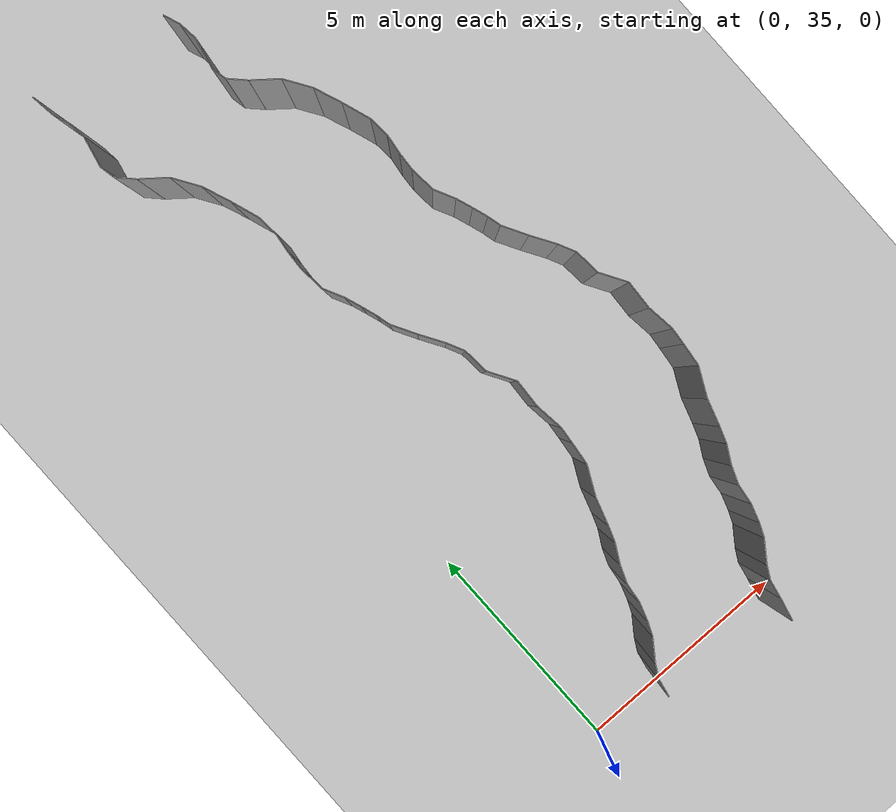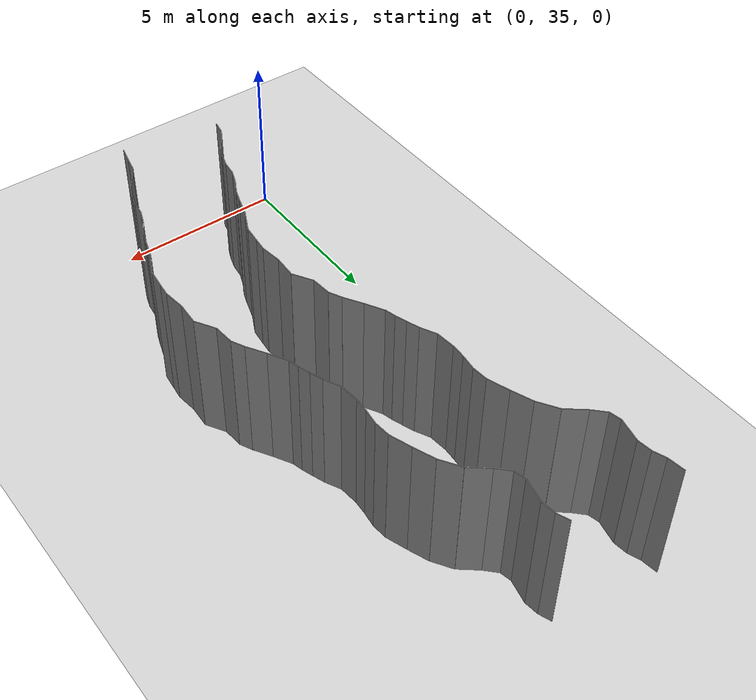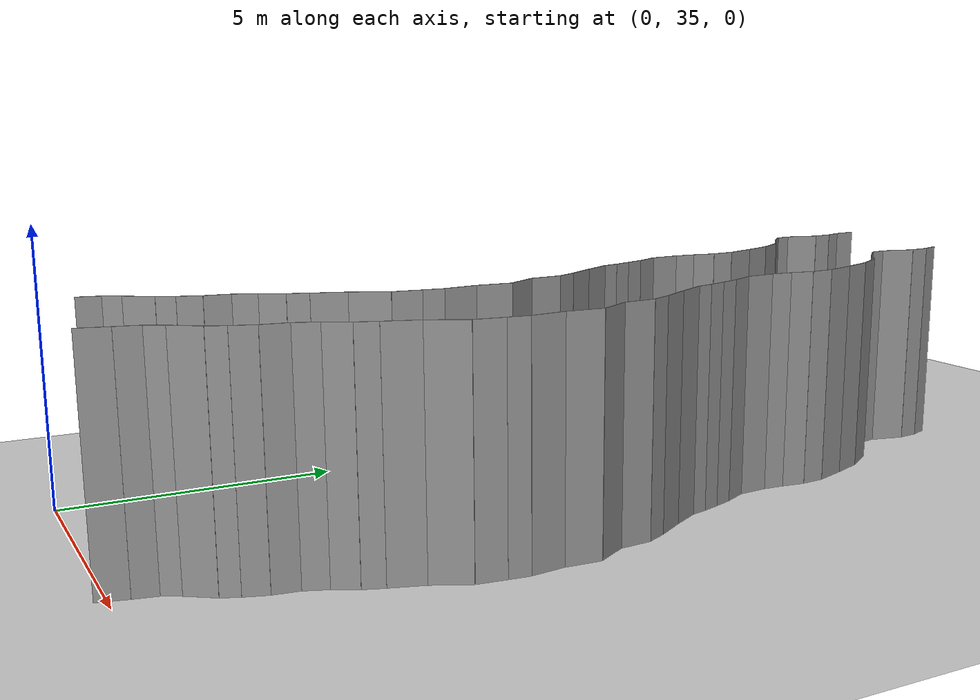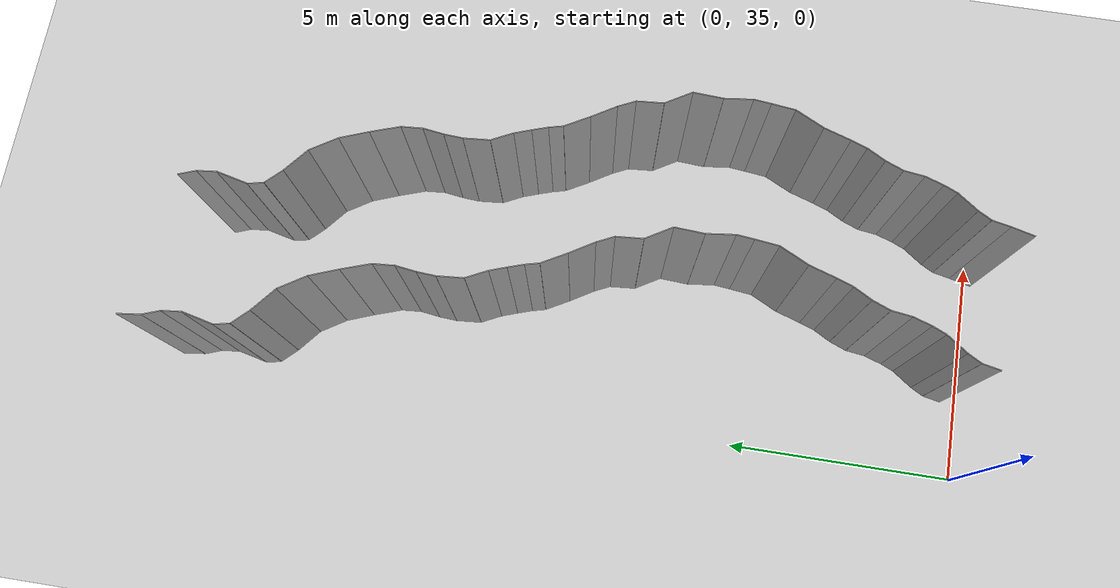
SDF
<sdf version="1.6">
 <world name="default">
  <model name="ground_plane">
   <static>1</static>
   <link name="link">
    <collision name="collision">
     <geometry><plane><normal>0 0 1</normal><size>200 200</size></plane></geometry>
     <surface><friction><ode><mu>100</mu><mu2>50</mu2></ode></friction></surface>
    </collision>
    <visual name="visual">
     <cast_shadows>0</cast_shadows>
     <geometry><plane><normal>0 0 1</normal><size>200 200</size></plane></geometry>
     <material>
      <script><uri>file://media/materials/scripts/gazebo.material</uri><name>Gazebo/Grey</name></script>
     </material>
    </visual>
   </link>
   <pose>0 100 0 0 -0 0</pose>
  </model>
  <model name="wall_149">
   <static>1</static>
   <pose>4.6969793171216 35.0735303822355 2 0 0 -0.24166629643161994</pose>
   <link name="link">
    <collision name="collision"><geometry><box><size>0.02 0.5210264239 4</size></box></geometry></collision>
    <visual name="visual">
     <material>
      <script><name>Gazebo/Grey</name><uri>file://media/materials/scripts/gazebo.material</uri></script>
     </material>
     <geometry><box><size>0.02 0.5210264239 4</size></box></geometry>
    </visual>
   </link>
  </model>
  <model name="wall_150">
   <static>1</static>
   <pose>1.79974682547872 35.525264396869375 2 0 0 -0.20060054303860328</pose>
   <link name="link">
    <collision name="collision"><geometry><box><size>0.02 0.405718179537 4</size></box></geometry></collision>
    <visual name="visual">
     <material>
      <script><name>Gazebo/Grey</name><uri>file://media/materials/scripts/gazebo.material</uri></script>
     </material>
     <geometry><box><size>0.02 0.405718179537 4</size></box></geometry>
    </visual>
   </link>
  </model>
  <model name="wall_151">
   <static>1</static>
   <pose>4.79974682547872 35.525264396869375 2 0 0 -0.20060054303860328</pose>
   <link name="link">
    <collision name="collision"><geometry><box><size>0.02 0.405718179537 4</size></box></geometry></collision>
    <visual name="visual">
     <material>
      <script><name>Gazebo/Grey</name><uri>file://media/materials/scripts/gazebo.material</uri></script>
     </material>
     <geometry><box><size>0.02 0.405718179537 4</size></box></geometry>
    </visual>
   </link>
  </model>
  <model name="wall_152">
   <static>1</static>
   <pose>1.918796776410854 35.866642658004146 2 0 0 -0.503950571279752</pose>
   <link name="link">
    <collision name="collision"><geometry><box><size>0.02 0.325659617761 4</size></box></geometry></collision>
    <visual name="visual">
     <material>
      <script><name>Gazebo/Grey</name><uri>file://media/materials/scripts/gazebo.material</uri></script>
     </material>
     <geometry><box><size>0.02 0.325659617761 4</size></box></geometry>
    </visual>
   </link>
  </model>
  <model name="wall_153">
   <static>1</static>
   <pose>4.918796776410854 35.866642658004146 2 0 0 -0.503950571279752</pose>
   <link name="link">
    <collision name="collision"><geometry><box><size>0.02 0.325659617761 4</size></box></geometry></collision>
    <visual name="visual">
     <material>
      <script><name>Gazebo/Grey</name><uri>file://media/materials/scripts/gazebo.material</uri></script>
     </material>
     <geometry><box><size>0.02 0.325659617761 4</size></box></geometry>
    </visual>
   </link>
  </model>
  <model name="wall_154">
   <static>1</static>
   <pose>2.157966141502711 36.23229113867859 2 0 0 -0.6238354839449126</pose>
   <link name="link">
    <collision name="collision"><geometry><box><size>0.02 0.549653333921 4</size></box></geometry></collision>
    <visual name="visual">
     <material>
      <script><name>Gazebo/Grey</name><uri>file://media/materials/scripts/gazebo.material</uri></script>
     </material>
     <geometry><box><size>0.02 0.549653333921 4</size></box></geometry>
    </visual>
   </link>
  </model>
  <model name="wall_155">
   <static>1</static>
   <pose>5.157966141502711 36.23229113867859 2 0 0 -0.6238354839449126</pose>
   <link name="link">
    <collision name="collision"><geometry><box><size>0.02 0.549653333921 4</size></box></geometry></collision>
    <visual name="visual">
     <material>
      <script><name>Gazebo/Grey</name><uri>file://media/materials/scripts/gazebo.material</uri></script>
     </material>
     <geometry><box><size>0.02 0.549653333921 4</size></box></geometry>
    </visual>
   </link>
  </model>
  <model name="wall_156">
   <static>1</static>
   <pose>2.382272629484397 36.602708103186856 2 0 0 -0.4084033582511111</pose>
   <link name="link">
    <collision name="collision"><geometry><box><size>0.02 0.321121421189 4</size></box></geometry></collision>
    <visual name="visual">
     <material>
      <script><name>Gazebo/Grey</name><uri>file://media/materials/scripts/gazebo.material</uri></script>
     </material>
     <geometry><box><size>0.02 0.321121421189 4</size></box></geometry>
    </visual>
   </link>
  </model>
  <model name="wall_157">
   <static>1</static>
   <pose>5.382272629484397 36.602708103186856 2 0 0 -0.4084033582511111</pose>
   <link name="link">
    <collision name="collision"><geometry><box><size>0.02 0.321121421189 4</size></box></geometry></collision>
    <visual name="visual">
     <material>
      <script><name>Gazebo/Grey</name><uri>file://media/materials/scripts/gazebo.material</uri></script>
     </material>
     <geometry><box><size>0.02 0.321121421189 4</size></box></geometry>
    </visual>
   </link>
  </model>
  <model name="wall_158">
   <static>1</static>
   <pose>2.5112741221134747 36.94788829129639 2 0 0 -0.3185358661723303</pose>
   <link name="link">
    <collision name="collision"><geometry><box><size>0.02 0.41660664704 4</size></box></geometry></collision>
    <visual name="visual">
     <material>
      <script><name>Gazebo/Grey</name><uri>file://media/materials/scripts/gazebo.material</uri></script>
     </material>
     <geometry><box><size>0.02 0.41660664704 4</size></box></geometry>
    </visual>
   </link>
  </model>
  <model name="wall_159">
   <static>1</static>
   <pose>5.511274122113475 36.94788829129639 2 0 0 -0.3185358661723303</pose>
   <link name="link">
    <collision name="collision"><geometry><box><size>0.02 0.41660664704 4</size></box></geometry></collision>
    <visual name="visual">
     <material>
      <script><name>Gazebo/Grey</name><uri>file://media/materials/scripts/gazebo.material</uri></script>
     </material>
     <geometry><box><size>0.02 0.41660664704 4</size></box></geometry>
    </visual>
   </link>
  </model>
  <model name="wall_160">
   <static>1</static>
   <pose>2.605761560680773 37.367698008629354 2 0 0 -0.1310186185193818</pose>
   <link name="link">
    <collision name="collision"><geometry><box><size>0.02 0.447808214041 4</size></box></geometry></collision>
    <visual name="visual">
     <material>
      <script><name>Gazebo/Grey</name><uri>file://media/materials/scripts/gazebo.material</uri></script>
     </material>
     <geometry><box><size>0.02 0.447808214041 4</size></box></geometry>
    </visual>
   </link>
  </model>
  <model name="wall_161">
   <static>1</static>
   <pose>5.605761560680773 37.367698008629354 2 0 0 -0.1310186185193818</pose>
   <link name="link">
    <collision name="collision"><geometry><box><size>0.02 0.447808214041 4</size></box></geometry></collision>
    <visual name="visual">
     <material>
      <script><name>Gazebo/Grey</name><uri>file://media/materials/scripts/gazebo.material</uri></script>
     </material>
     <geometry><box><size>0.02 0.447808214041 4</size></box></geometry>
    </visual>
   </link>
  </model>
  <model name="wall_162">
   <static>1</static>
   <pose>2.711945933907492 37.78450114798718 2 0 0 -0.37609757434408303</pose>
   <link name="link">
    <collision name="collision"><geometry><box><size>0.02 0.418916207705 4</size></box></geometry></collision>
    <visual name="visual">
     <material>
      <script><name>Gazebo/Grey</name><uri>file://media/materials/scripts/gazebo.material</uri></script>
     </material>
     <geometry><box><size>0.02 0.418916207705 4</size></box></geometry>
    </visual>
   </link>
  </model>
  <model name="wall_163">
   <static>1</static>
   <pose>5.711945933907492 37.78450114798718 2 0 0 -0.37609757434408303</pose>
   <link name="link">
    <collision name="collision"><geometry><box><size>0.02 0.418916207705 4</size></box></geometry></collision>
    <visual name="visual">
     <material>
      <script><name>Gazebo/Grey</name><uri>file://media/materials/scripts/gazebo.material</uri></script>
     </material>
     <geometry><box><size>0.02 0.418916207705 4</size></box></geometry>
    </visual>
   </link>
  </model>
  <model name="wall_164">
   <static>1</static>
   <pose>2.898206059474335 38.177197247152854 2 0 0 -0.5047600862091364</pose>
   <link name="link">
    <collision name="collision"><geometry><box><size>0.02 0.452142583865 4</size></box></geometry></collision>
    <visual name="visual">
     <material>
      <script><name>Gazebo/Grey</name><uri>file://media/materials/scripts/gazebo.material</uri></script>
     </material>
     <geometry><box><size>0.02 0.452142583865 4</size></box></geometry>
    </visual>
   </link>
  </model>
  <model name="wall_165">
   <static>1</static>
   <pose>5.898206059474335 38.177197247152854 2 0 0 -0.5047600862091364</pose>
   <link name="link">
    <collision name="collision"><geometry><box><size>0.02 0.452142583865 4</size></box></geometry></collision>
    <visual name="visual">
     <material>
      <script><name>Gazebo/Grey</name><uri>file://media/materials/scripts/gazebo.material</uri></script>
     </material>
     <geometry><box><size>0.02 0.452142583865 4</size></box></geometry>
    </visual>
   </link>
  </model>
  <model name="wall_166">
   <static>1</static>
   <pose>3.0704518864089705 38.55022390431878 2 0 0 -0.34487220597518853</pose>
   <link name="link">
    <collision name="collision"><geometry><box><size>0.02 0.372213632169 4</size></box></geometry></collision>
    <visual name="visual">
     <material>
      <script><name>Gazebo/Grey</name><uri>file://media/materials/scripts/gazebo.material</uri></script>
     </material>
     <geometry><box><size>0.02 0.372213632169 4</size></box></geometry>
    </visual>
   </link>
  </model>
  <model name="wall_167">
   <static>1</static>
   <pose>6.0704518864089705 38.55022390431878 2 0 0 -0.34487220597518853</pose>
   <link name="link">
    <collision name="collision"><geometry><box><size>0.02 0.372213632169 4</size></box></geometry></collision>
    <visual name="visual">
     <material>
      <script><name>Gazebo/Grey</name><uri>file://media/materials/scripts/gazebo.material</uri></script>
     </material>
     <geometry><box><size>0.02 0.372213632169 4</size></box></geometry>
    </visual>
   </link>
  </model>
  <model name="wall_168">
   <static>1</static>
   <pose>3.2260037202019265 39.0168105518373 2 0 0 -0.30775120644099646</pose>
   <link name="link">
    <collision name="collision"><geometry><box><size>0.02 0.611611326444 4</size></box></geometry></collision>
    <visual name="visual">
     <material>
      <script><name>Gazebo/Grey</name><uri>file://media/materials/scripts/gazebo.material</uri></script>
     </material>
     <geometry><box><size>0.02 0.611611326444 4</size></box></geometry>
    </visual>
   </link>
  </model>
  <model name="wall_169">
   <static>1</static>
   <pose>6.226003720201927 39.0168105518373 2 0 0 -0.30775120644099646</pose>
   <link name="link">
    <collision name="collision"><geometry><box><size>0.02 0.611611326444 4</size></box></geometry></collision>
    <visual name="visual">
     <material>
      <script><name>Gazebo/Grey</name><uri>file://media/materials/scripts/gazebo.material</uri></script>
     </material>
     <geometry><box><size>0.02 0.611611326444 4</size></box></geometry>
    </visual>
   </link>
  </model>
  <model name="wall_170">
   <static>1</static>
   <pose>3.4740501669893713 39.62093917247013 2 0 0 -0.4612594082459875</pose>
   <link name="link">
    <collision name="collision"><geometry><box><size>0.02 0.698365447285 4</size></box></geometry></collision>
    <visual name="visual">
     <material>
      <script><name>Gazebo/Grey</name><uri>file://media/materials/scripts/gazebo.material</uri></script>
     </material>
     <geometry><box><size>0.02 0.698365447285 4</size></box></geometry>
    </visual>
   </link>
  </model>
  <model name="wall_171">
   <static>1</static>
   <pose>6.474050166989372 39.62093917247013 2 0 0 -0.4612594082459875</pose>
   <link name="link">
    <collision name="collision"><geometry><box><size>0.02 0.698365447285 4</size></box></geometry></collision>
    <visual name="visual">
     <material>
      <script><name>Gazebo/Grey</name><uri>file://media/materials/scripts/gazebo.material</uri></script>
     </material>
     <geometry><box><size>0.02 0.698365447285 4</size></box></geometry>
    </visual>
   </link>
  </model>
  <model name="wall_172">
   <static>1</static>
   <pose>3.660588384543488 40.19398678460757 2 0 0 -0.1189837603898685</pose>
   <link name="link">
    <collision name="collision"><geometry><box><size>0.02 0.524421859859 4</size></box></geometry></collision>
    <visual name="visual">
     <material>
      <script><name>Gazebo/Grey</name><uri>file://media/materials/scripts/gazebo.material</uri></script>
     </material>
     <geometry><box><size>0.02 0.524421859859 4</size></box></geometry>
    </visual>
   </link>
  </model>
  <model name="wall_173">
   <static>1</static>
   <pose>6.6605883845434875 40.19398678460757 2 0 0 -0.1189837603898685</pose>
   <link name="link">
    <collision name="collision"><geometry><box><size>0.02 0.524421859859 4</size></box></geometry></collision>
    <visual name="visual">
     <material>
      <script><name>Gazebo/Grey</name><uri>file://media/materials/scripts/gazebo.material</uri></script>
     </material>
     <geometry><box><size>0.02 0.524421859859 4</size></box></geometry>
    </visual>
   </link>
  </model>
  <model name="wall_174">
   <static>1</static>
   <pose>3.7108708175386727 40.64417724971152 2 0 0 -0.10057509902386169</pose>
   <link name="link">
    <collision name="collision"><geometry><box><size>0.02 0.381595206871 4</size></box></geometry></collision>
    <visual name="visual">
     <material>
      <script><name>Gazebo/Grey</name><uri>file://media/materials/scripts/gazebo.material</uri></script>
     </material>
     <geometry><box><size>0.02 0.381595206871 4</size></box></geometry>
    </visual>
   </link>
  </model>
  <model name="wall_175">
   <static>1</static>
   <pose>6.710870817538673 40.64417724971152 2 0 0 -0.10057509902386169</pose>
   <link name="link">
    <collision name="collision"><geometry><box><size>0.02 0.381595206871 4</size></box></geometry></collision>
    <visual name="visual">
     <material>
      <script><name>Gazebo/Grey</name><uri>file://media/materials/scripts/gazebo.material</uri></script>
     </material>
     <geometry><box><size>0.02 0.381595206871 4</size></box></geometry>
    </visual>
   </link>
  </model>
  <model name="wall_176">
   <static>1</static>
   <pose>3.6919440057413544 41.14534305260244 2 0 0 0.12172101936401832</pose>
   <link name="link">
    <collision name="collision"><geometry><box><size>0.02 0.627306108162 4</size></box></geometry></collision>
    <visual name="visual">
     <material>
      <script><name>Gazebo/Grey</name><uri>file://media/materials/scripts/gazebo.material</uri></script>
     </material>
     <geometry><box><size>0.02 0.627306108162 4</size></box></geometry>
    </visual>
   </link>
  </model>
  <model name="wall_177">
   <static>1</static>
   <pose>6.691944005741354 41.14534305260244 2 0 0 0.12172101936401832</pose>
   <link name="link">
    <collision name="collision"><geometry><box><size>0.02 0.627306108162 4</size></box></geometry></collision>
    <visual name="visual">
     <material>
      <script><name>Gazebo/Grey</name><uri>file://media/materials/scripts/gazebo.material</uri></script>
     </material>
     <geometry><box><size>0.02 0.627306108162 4</size></box></geometry>
    </visual>
   </link>
  </model>
  <model name="wall_178">
   <static>1</static>
   <pose>3.673060688691099 41.78459574653556 2 0 0 -0.058486007158673935</pose>
   <link name="link">
    <collision name="collision"><geometry><box><size>0.02 0.656963920062 4</size></box></geometry></collision>
    <visual name="visual">
     <material>
      <script><name>Gazebo/Grey</name><uri>file://media/materials/scripts/gazebo.material</uri></script>
     </material>
     <geometry><box><size>0.02 0.656963920062 4</size></box></geometry>
    </visual>
   </link>
  </model>
  <model name="wall_179">
   <static>1</static>
   <pose>6.673060688691098 41.78459574653556 2 0 0 -0.058486007158673935</pose>
   <link name="link">
    <collision name="collision"><geometry><box><size>0.02 0.656963920062 4</size></box></geometry></collision>
    <visual name="visual">
     <material>
      <script><name>Gazebo/Grey</name><uri>file://media/materials/scripts/gazebo.material</uri></script>
     </material>
     <geometry><box><size>0.02 0.656963920062 4</size></box></geometry>
    </visual>
   </link>
  </model>
  <model name="wall_180">
   <static>1</static>
   <pose>3.5248651994312996 42.39329241933462 2 0 0 0.5376135310645631</pose>
   <link name="link">
    <collision name="collision"><geometry><box><size>0.02 0.653779257988 4</size></box></geometry></collision>
    <visual name="visual">
     <material>
      <script><name>Gazebo/Grey</name><uri>file://media/materials/scripts/gazebo.material</uri></script>
     </material>
     <geometry><box><size>0.02 0.653779257988 4</size></box></geometry>
    </visual>
   </link>
  </model>
  <model name="wall_181">
   <static>1</static>
   <pose>6.5248651994313 42.39329241933462 2 0 0 0.5376135310645631</pose>
   <link name="link">
    <collision name="collision"><geometry><box><size>0.02 0.653779257988 4</size></box></geometry></collision>
    <visual name="visual">
     <material>
      <script><name>Gazebo/Grey</name><uri>file://media/materials/scripts/gazebo.material</uri></script>
     </material>
     <geometry><box><size>0.02 0.653779257988 4</size></box></geometry>
    </visual>
   </link>
  </model>
  <model name="wall_182">
   <static>1</static>
   <pose>3.3334624621255995 42.968905156298305 2 0 0 0.08124424038246214</pose>
   <link name="link">
    <collision name="collision"><geometry><box><size>0.02 0.591624230517 4</size></box></geometry></collision>
    <visual name="visual">
     <material>
      <script><name>Gazebo/Grey</name><uri>file://media/materials/scripts/gazebo.material</uri></script>
     </material>
     <geometry><box><size>0.02 0.591624230517 4</size></box></geometry>
    </visual>
   </link>
  </model>
  <model name="wall_183">
   <static>1</static>
   <pose>6.333462462125599 42.968905156298305 2 0 0 0.08124424038246214</pose>
   <link name="link">
    <collision name="collision"><geometry><box><size>0.02 0.591624230517 4</size></box></geometry></collision>
    <visual name="visual">
     <material>
      <script><name>Gazebo/Grey</name><uri>file://media/materials/scripts/gazebo.material</uri></script>
     </material>
     <geometry><box><size>0.02 0.591624230517 4</size></box></geometry>
    </visual>
   </link>
  </model>
  <model name="wall_184">
   <static>1</static>
   <pose>3.2201909195868796 43.44828470858701 2 0 0 0.45052897295064376</pose>
   <link name="link">
    <collision name="collision"><geometry><box><size>0.02 0.409997134183 4</size></box></geometry></collision>
    <visual name="visual">
     <material>
      <script><name>Gazebo/Grey</name><uri>file://media/materials/scripts/gazebo.material</uri></script>
     </material>
     <geometry><box><size>0.02 0.409997134183 4</size></box></geometry>
    </visual>
   </link>
  </model>
  <model name="wall_185">
   <static>1</static>
   <pose>6.22019091958688 43.44828470858701 2 0 0 0.45052897295064376</pose>
   <link name="link">
    <collision name="collision"><geometry><box><size>0.02 0.409997134183 4</size></box></geometry></collision>
    <visual name="visual">
     <material>
      <script><name>Gazebo/Grey</name><uri>file://media/materials/scripts/gazebo.material</uri></script>
     </material>
     <geometry><box><size>0.02 0.409997134183 4</size></box></geometry>
    </visual>
   </link>
  </model>
  <model name="wall_186">
   <static>1</static>
   <pose>2.9725240908861217 43.89252300888898 2 0 0 0.5477059400725273</pose>
   <link name="link">
    <collision name="collision"><geometry><box><size>0.02 0.608383816148 4</size></box></geometry></collision>
    <visual name="visual">
     <material>
      <script><name>Gazebo/Grey</name><uri>file://media/materials/scripts/gazebo.material</uri></script>
     </material>
     <geometry><box><size>0.02 0.608383816148 4</size></box></geometry>
    </visual>
   </link>
  </model>
  <model name="wall_187">
   <static>1</static>
   <pose>5.972524090886122 43.89252300888898 2 0 0 0.5477059400725273</pose>
   <link name="link">
    <collision name="collision"><geometry><box><size>0.02 0.608383816148 4</size></box></geometry></collision>
    <visual name="visual">
     <material>
      <script><name>Gazebo/Grey</name><uri>file://media/materials/scripts/gazebo.material</uri></script>
     </material>
     <geometry><box><size>0.02 0.608383816148 4</size></box></geometry>
    </visual>
   </link>
  </model>
  <model name="wall_188">
   <static>1</static>
   <pose>2.6668597322436387 44.41602189340031 2 0 0 0.5091378421086655</pose>
   <link name="link">
    <collision name="collision"><geometry><box><size>0.02 0.604247160935 4</size></box></geometry></collision>
    <visual name="visual">
     <material>
      <script><name>Gazebo/Grey</name><uri>file://media/materials/scripts/gazebo.material</uri></script>
     </material>
     <geometry><box><size>0.02 0.604247160935 4</size></box></geometry>
    </visual>
   </link>
  </model>
  <model name="wall_189">
   <static>1</static>
   <pose>5.666859732243639 44.41602189340031 2 0 0 0.5091378421086655</pose>
   <link name="link">
    <collision name="collision"><geometry><box><size>0.02 0.604247160935 4</size></box></geometry></collision>
    <visual name="visual">
     <material>
      <script><name>Gazebo/Grey</name><uri>file://media/materials/scripts/gazebo.material</uri></script>
     </material>
     <geometry><box><size>0.02 0.604247160935 4</size></box></geometry>
    </visual>
   </link>
  </model>
  <model name="wall_190">
   <static>1</static>
   <pose>2.4818396124889395 44.83184003494626 2 0 0 0.24345532832244754</pose>
   <link name="link">
    <collision name="collision"><geometry><box><size>0.02 0.313266743006 4</size></box></geometry></collision>
    <visual name="visual">
     <material>
      <script><name>Gazebo/Grey</name><uri>file://media/materials/scripts/gazebo.material</uri></script>
     </material>
     <geometry><box><size>0.02 0.313266743006 4</size></box></geometry>
    </visual>
   </link>
  </model>
  <model name="wall_191">
   <static>1</static>
   <pose>5.4818396124889395 44.83184003494626 2 0 0 0.24345532832244754</pose>
   <link name="link">
    <collision name="collision"><geometry><box><size>0.02 0.313266743006 4</size></box></geometry></collision>
    <visual name="visual">
     <material>
      <script><name>Gazebo/Grey</name><uri>file://media/materials/scripts/gazebo.material</uri></script>
     </material>
     <geometry><box><size>0.02 0.313266743006 4</size></box></geometry>
    </visual>
   </link>
  </model>
  <model name="wall_192">
   <static>1</static>
   <pose>2.3882700129233063 45.15179019028032 2 0 0 0.32085724126364706</pose>
   <link name="link">
    <collision name="collision"><geometry><box><size>0.02 0.353934440709 4</size></box></geometry></collision>
    <visual name="visual">
     <material>
      <script><name>Gazebo/Grey</name><uri>file://media/materials/scripts/gazebo.material</uri></script>
     </material>
     <geometry><box><size>0.02 0.353934440709 4</size></box></geometry>
    </visual>
   </link>
  </model>
  <model name="wall_193">
   <static>1</static>
   <pose>5.388270012923306 45.15179019028032 2 0 0 0.32085724126364706</pose>
   <link name="link">
    <collision name="collision"><geometry><box><size>0.02 0.353934440709 4</size></box></geometry></collision>
    <visual name="visual">
     <material>
      <script><name>Gazebo/Grey</name><uri>file://media/materials/scripts/gazebo.material</uri></script>
     </material>
     <geometry><box><size>0.02 0.353934440709 4</size></box></geometry>
    </visual>
   </link>
  </model>
  <model name="wall_194">
   <static>1</static>
   <pose>2.268754346960673 45.499462389319206 2 0 0 0.3406145778523593</pose>
   <link name="link">
    <collision name="collision"><geometry><box><size>0.02 0.381383517378 4</size></box></geometry></collision>
    <visual name="visual">
     <material>
      <script><name>Gazebo/Grey</name><uri>file://media/materials/scripts/gazebo.material</uri></script>
     </material>
     <geometry><box><size>0.02 0.381383517378 4</size></box></geometry>
    </visual>
   </link>
  </model>
  <model name="wall_195">
   <static>1</static>
   <pose>5.268754346960673 45.499462389319206 2 0 0 0.3406145778523593</pose>
   <link name="link">
    <collision name="collision"><geometry><box><size>0.02 0.381383517378 4</size></box></geometry></collision>
    <visual name="visual">
     <material>
      <script><name>Gazebo/Grey</name><uri>file://media/materials/scripts/gazebo.material</uri></script>
     </material>
     <geometry><box><size>0.02 0.381383517378 4</size></box></geometry>
    </visual>
   </link>
  </model>
  <model name="wall_196">
   <static>1</static>
   <pose>2.0923143074279027 45.905170996514585 2 0 0 0.46276298857304893</pose>
   <link name="link">
    <collision name="collision"><geometry><box><size>0.02 0.505065954996 4</size></box></geometry></collision>
    <visual name="visual">
     <material>
      <script><name>Gazebo/Grey</name><uri>file://media/materials/scripts/gazebo.material</uri></script>
     </material>
     <geometry><box><size>0.02 0.505065954996 4</size></box></geometry>
    </visual>
   </link>
  </model>
  <model name="wall_197">
   <static>1</static>
   <pose>5.092314307427903 45.905170996514585 2 0 0 0.46276298857304893</pose>
   <link name="link">
    <collision name="collision"><geometry><box><size>0.02 0.505065954996 4</size></box></geometry></collision>
    <visual name="visual">
     <material>
      <script><name>Gazebo/Grey</name><uri>file://media/materials/scripts/gazebo.material</uri></script>
     </material>
     <geometry><box><size>0.02 0.505065954996 4</size></box></geometry>
    </visual>
   </link>
  </model>
  <model name="wall_198">
   <static>1</static>
   <pose>1.955610083845055 46.416987977560865 2 0 0 0.08365365867231682</pose>
   <link name="link">
    <collision name="collision"><geometry><box><size>0.02 0.573695776608 4</size></box></geometry></collision>
    <visual name="visual">
     <material>
      <script><name>Gazebo/Grey</name><uri>file://media/materials/scripts/gazebo.material</uri></script>
     </material>
     <geometry><box><size>0.02 0.573695776608 4</size></box></geometry>
    </visual>
   </link>
  </model>
  <model name="wall_199">
   <static>1</static>
   <pose>4.955610083845055 46.416987977560865 2 0 0 0.08365365867231682</pose>
   <link name="link">
    <collision name="collision"><geometry><box><size>0.02 0.573695776608 4</size></box></geometry></collision>
    <visual name="visual">
     <material>
      <script><name>Gazebo/Grey</name><uri>file://media/materials/scripts/gazebo.material</uri></script>
     </material>
     <geometry><box><size>0.02 0.573695776608 4</size></box></geometry>
    </visual>
   </link>
  </model>
  <model name="wall_200">
   <static>1</static>
   <pose>1.9445772799296324 46.90621336008031 2 0 0 -0.06351489202788717</pose>
   <link name="link">
    <collision name="collision"><geometry><box><size>0.02 0.407583008288 4</size></box></geometry></collision>
    <visual name="visual">
     <material>
      <script><name>Gazebo/Grey</name><uri>file://media/materials/scripts/gazebo.material</uri></script>
     </material>
     <geometry><box><size>0.02 0.407583008288 4</size></box></geometry>
    </visual>
   </link>
  </model>
  <model name="wall_201">
   <static>1</static>
   <pose>4.944577279929632 46.90621336008031 2 0 0 -0.06351489202788717</pose>
   <link name="link">
    <collision name="collision"><geometry><box><size>0.02 0.407583008288 4</size></box></geometry></collision>
    <visual name="visual">
     <material>
      <script><name>Gazebo/Grey</name><uri>file://media/materials/scripts/gazebo.material</uri></script>
     </material>
     <geometry><box><size>0.02 0.407583008288 4</size></box></geometry>
    </visual>
   </link>
  </model>
  <model name="wall_202">
   <static>1</static>
   <pose>1.9881224174694505 47.335658964443695 2 0 0 -0.13458519214179268</pose>
   <link name="link">
    <collision name="collision"><geometry><box><size>0.02 0.45625593604 4</size></box></geometry></collision>
    <visual name="visual">
     <material>
      <script><name>Gazebo/Grey</name><uri>file://media/materials/scripts/gazebo.material</uri></script>
     </material>
     <geometry><box><size>0.02 0.45625593604 4</size></box></geometry>
    </visual>
   </link>
  </model>
  <model name="wall_203">
   <static>1</static>
   <pose>4.988122417469451 47.335658964443695 2 0 0 -0.13458519214179268</pose>
   <link name="link">
    <collision name="collision"><geometry><box><size>0.02 0.45625593604 4</size></box></geometry></collision>
    <visual name="visual">
     <material>
      <script><name>Gazebo/Grey</name><uri>file://media/materials/scripts/gazebo.material</uri></script>
     </material>
     <geometry><box><size>0.02 0.45625593604 4</size></box></geometry>
    </visual>
   </link>
  </model>
  <model name="wall_204">
   <static>1</static>
   <pose>2.0013526944713838 47.79211519345166 2 0 0 0.07529328822296916</pose>
   <link name="link">
    <collision name="collision"><geometry><box><size>0.02 0.462091608458 4</size></box></geometry></collision>
    <visual name="visual">
     <material>
      <script><name>Gazebo/Grey</name><uri>file://media/materials/scripts/gazebo.material</uri></script>
     </material>
     <geometry><box><size>0.02 0.462091608458 4</size></box></geometry>
    </visual>
   </link>
  </model>
  <model name="wall_205">
   <static>1</static>
   <pose>5.001352694471384 47.79211519345166 2 0 0 0.07529328822296916</pose>
   <link name="link">
    <collision name="collision"><geometry><box><size>0.02 0.462091608458 4</size></box></geometry></collision>
    <visual name="visual">
     <material>
      <script><name>Gazebo/Grey</name><uri>file://media/materials/scripts/gazebo.material</uri></script>
     </material>
     <geometry><box><size>0.02 0.462091608458 4</size></box></geometry>
    </visual>
   </link>
  </model>
  <model name="wall_206">
   <static>1</static>
   <pose>1.8765494491392976 48.335584293478234 2 0 0 0.33053309204079423</pose>
   <link name="link">
    <collision name="collision"><geometry><box><size>0.02 0.661989643919 4</size></box></geometry></collision>
    <visual name="visual">
     <material>
      <script><name>Gazebo/Grey</name><uri>file://media/materials/scripts/gazebo.material</uri></script>
     </material>
     <geometry><box><size>0.02 0.661989643919 4</size></box></geometry>
    </visual>
   </link>
  </model>
  <model name="wall_207">
   <static>1</static>
   <pose>4.876549449139297 48.335584293478234 2 0 0 0.33053309204079423</pose>
   <link name="link">
    <collision name="collision"><geometry><box><size>0.02 0.661989643919 4</size></box></geometry></collision>
    <visual name="visual">
     <material>
      <script><name>Gazebo/Grey</name><uri>file://media/materials/scripts/gazebo.material</uri></script>
     </material>
     <geometry><box><size>0.02 0.661989643919 4</size></box></geometry>
    </visual>
   </link>
  </model>
  <model name="wall_208">
   <static>1</static>
   <pose>1.6527630626983971 48.95135390754171 2 0 0 0.3670098241754687</pose>
   <link name="link">
    <collision name="collision"><geometry><box><size>0.02 0.648575679561 4</size></box></geometry></collision>
    <visual name="visual">
     <material>
      <script><name>Gazebo/Grey</name><uri>file://media/materials/scripts/gazebo.material</uri></script>
     </material>
     <geometry><box><size>0.02 0.648575679561 4</size></box></geometry>
    </visual>
   </link>
  </model>
  <model name="wall_209">
   <static>1</static>
   <pose>4.652763062698397 48.95135390754171 2 0 0 0.3670098241754687</pose>
   <link name="link">
    <collision name="collision"><geometry><box><size>0.02 0.648575679561 4</size></box></geometry></collision>
    <visual name="visual">
     <material>
      <script><name>Gazebo/Grey</name><uri>file://media/materials/scripts/gazebo.material</uri></script>
     </material>
     <geometry><box><size>0.02 0.648575679561 4</size></box></geometry>
    </visual>
   </link>
  </model>
  <model name="wall_210">
   <static>1</static>
   <pose>1.3564180638466463 49.53516924177147 2 0 0 0.5694721007291772</pose>
   <link name="link">
    <collision name="collision"><geometry><box><size>0.02 0.667604793972 4</size></box></geometry></collision>
    <visual name="visual">
     <material>
      <script><name>Gazebo/Grey</name><uri>file://media/materials/scripts/gazebo.material</uri></script>
     </material>
     <geometry><box><size>0.02 0.667604793972 4</size></box></geometry>
    </visual>
   </link>
  </model>
  <model name="wall_211">
   <static>1</static>
   <pose>4.356418063846647 49.53516924177147 2 0 0 0.5694721007291772</pose>
   <link name="link">
    <collision name="collision"><geometry><box><size>0.02 0.667604793972 4</size></box></geometry></collision>
    <visual name="visual">
     <material>
      <script><name>Gazebo/Grey</name><uri>file://media/materials/scripts/gazebo.material</uri></script>
     </material>
     <geometry><box><size>0.02 0.667604793972 4</size></box></geometry>
    </visual>
   </link>
  </model>
  <model name="wall_212">
   <static>1</static>
   <pose>0.9183906285456852 50.02505241731942 2 0 0 0.8905895666818393</pose>
   <link name="link">
    <collision name="collision"><geometry><box><size>0.02 0.663831163876 4</size></box></geometry></collision>
    <visual name="visual">
     <material>
      <script><name>Gazebo/Grey</name><uri>file://media/materials/scripts/gazebo.material</uri></script>
     </material>
     <geometry><box><size>0.02 0.663831163876 4</size></box></geometry>
    </visual>
   </link>
  </model>
  <model name="wall_213">
   <static>1</static>
   <pose>3.9183906285456853 50.02505241731942 2 0 0 0.8905895666818393</pose>
   <link name="link">
    <collision name="collision"><geometry><box><size>0.02 0.663831163876 4</size></box></geometry></collision>
    <visual name="visual">
     <material>
      <script><name>Gazebo/Grey</name><uri>file://media/materials/scripts/gazebo.material</uri></script>
     </material>
     <geometry><box><size>0.02 0.663831163876 4</size></box></geometry>
    </visual>
   </link>
  </model>
  <model name="wall_214">
   <static>1</static>
   <pose>0.4987843954729787 50.39973290055181 2 0 0 0.772085131079468</pose>
   <link name="link">
    <collision name="collision"><geometry><box><size>0.02 0.46317026486 4</size></box></geometry></collision>
    <visual name="visual">
     <material>
      <script><name>Gazebo/Grey</name><uri>file://media/materials/scripts/gazebo.material</uri></script>
     </material>
     <geometry><box><size>0.02 0.46317026486 4</size></box></geometry>
    </visual>
   </link>
  </model>
  <model name="wall_215">
   <static>1</static>
   <pose>3.4987843954729785 50.39973290055181 2 0 0 0.772085131079468</pose>
   <link name="link">
    <collision name="collision"><geometry><box><size>0.02 0.46317026486 4</size></box></geometry></collision>
    <visual name="visual">
     <material>
      <script><name>Gazebo/Grey</name><uri>file://media/materials/scripts/gazebo.material</uri></script>
     </material>
     <geometry><box><size>0.02 0.46317026486 4</size></box></geometry>
    </visual>
   </link>
  </model>
  <model name="wall_216">
   <static>1</static>
   <pose>0.3021685581417006 50.733100891620836 2 0 0 0.20636901978772498</pose>
   <link name="link">
    <collision name="collision"><geometry><box><size>0.02 0.342154176101 4</size></box></geometry></collision>
    <visual name="visual">
     <material>
      <script><name>Gazebo/Grey</name><uri>file://media/materials/scripts/gazebo.material</uri></script>
     </material>
     <geometry><box><size>0.02 0.342154176101 4</size></box></geometry>
    </visual>
   </link>
  </model>
  <model name="wall_217">
   <static>1</static>
   <pose>3.302168558141701 50.733100891620836 2 0 0 0.20636901978772498</pose>
   <link name="link">
    <collision name="collision"><geometry><box><size>0.02 0.342154176101 4</size></box></geometry></collision>
    <visual name="visual">
     <material>
      <script><name>Gazebo/Grey</name><uri>file://media/materials/scripts/gazebo.material</uri></script>
     </material>
     <geometry><box><size>0.02 0.342154176101 4</size></box></geometry>
    </visual>
   </link>
  </model>
  <model name="wall_218">
   <static>1</static>
   <pose>0.34485306426877727 51.23928989069188 2 0 0 -0.22558835626815485</pose>
   <link name="link">
    <collision name="collision"><geometry><box><size>0.02 0.695095729874 4</size></box></geometry></collision>
    <visual name="visual">
     <material>
      <script><name>Gazebo/Grey</name><uri>file://media/materials/scripts/gazebo.material</uri></script>
     </material>
     <geometry><box><size>0.02 0.695095729874 4</size></box></geometry>
    </visual>
   </link>
  </model>
  <model name="wall_219">
   <static>1</static>
   <pose>3.3448530642687775 51.23928989069188 2 0 0 -0.22558835626815485</pose>
   <link name="link">
    <collision name="collision"><geometry><box><size>0.02 0.695095729874 4</size></box></geometry></collision>
    <visual name="visual">
     <material>
      <script><name>Gazebo/Grey</name><uri>file://media/materials/scripts/gazebo.material</uri></script>
     </material>
     <geometry><box><size>0.02 0.695095729874 4</size></box></geometry>
    </visual>
   </link>
  </model>
  <model name="wall_220">
   <static>1</static>
   <pose>0.3999550040772759 51.78725904062633 2 0 0 0.10777658680278306</pose>
   <link name="link">
    <collision name="collision"><geometry><box><size>0.02 0.420896596723 4</size></box></geometry></collision>
    <visual name="visual">
     <material>
      <script><name>Gazebo/Grey</name><uri>file://media/materials/scripts/gazebo.material</uri></script>
     </material>
     <geometry><box><size>0.02 0.420896596723 4</size></box></geometry>
    </visual>
   </link>
  </model>
  <model name="wall_221">
   <static>1</static>
   <pose>3.3999550040772757 51.78725904062633 2 0 0 0.10777658680278306</pose>
   <link name="link">
    <collision name="collision"><geometry><box><size>0.02 0.420896596723 4</size></box></geometry></collision>
    <visual name="visual">
     <material>
      <script><name>Gazebo/Grey</name><uri>file://media/materials/scripts/gazebo.material</uri></script>
     </material>
     <geometry><box><size>0.02 0.420896596723 4</size></box></geometry>
    </visual>
   </link>
  </model>
  <model name="wall_222">
   <static>1</static>
   <pose>0.309710117266409 52.17908595692469 2 0 0 0.3545990005882323</pose>
   <link name="link">
    <collision name="collision"><geometry><box><size>0.02 0.389427303672 4</size></box></geometry></collision>
    <visual name="visual">
     <material>
      <script><name>Gazebo/Grey</name><uri>file://media/materials/scripts/gazebo.material</uri></script>
     </material>
     <geometry><box><size>0.02 0.389427303672 4</size></box></geometry>
    </visual>
   </link>
  </model>
  <model name="wall_223">
   <static>1</static>
   <pose>3.309710117266409 52.17908595692469 2 0 0 0.3545990005882323</pose>
   <link name="link">
    <collision name="collision"><geometry><box><size>0.02 0.389427303672 4</size></box></geometry></collision>
    <visual name="visual">
     <material>
      <script><name>Gazebo/Grey</name><uri>file://media/materials/scripts/gazebo.material</uri></script>
     </material>
     <geometry><box><size>0.02 0.389427303672 4</size></box></geometry>
    </visual>
   </link>
  </model>
  <model name="wall_224">
   <static>1</static>
   <pose>0.21138894574855957 52.61183467587801 2 0 0 0.12217053225427776</pose>
   <link name="link">
    <collision name="collision"><geometry><box><size>0.02 0.504055038883 4</size></box></geometry></collision>
    <visual name="visual">
     <material>
      <script><name>Gazebo/Grey</name><uri>file://media/materials/scripts/gazebo.material</uri></script>
     </material>
     <geometry><box><size>0.02 0.504055038883 4</size></box></geometry>
    </visual>
   </link>
  </model>
 </world>
</sdf>
